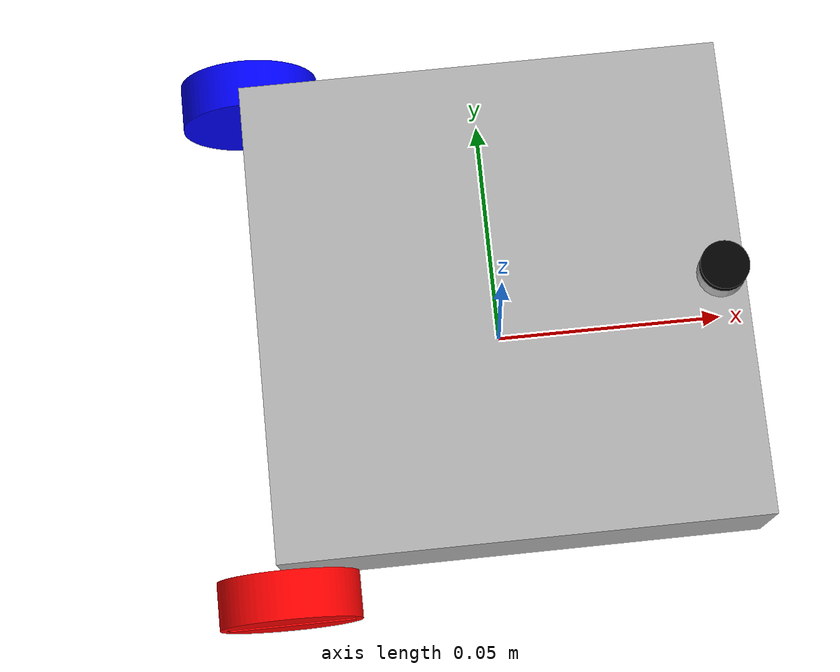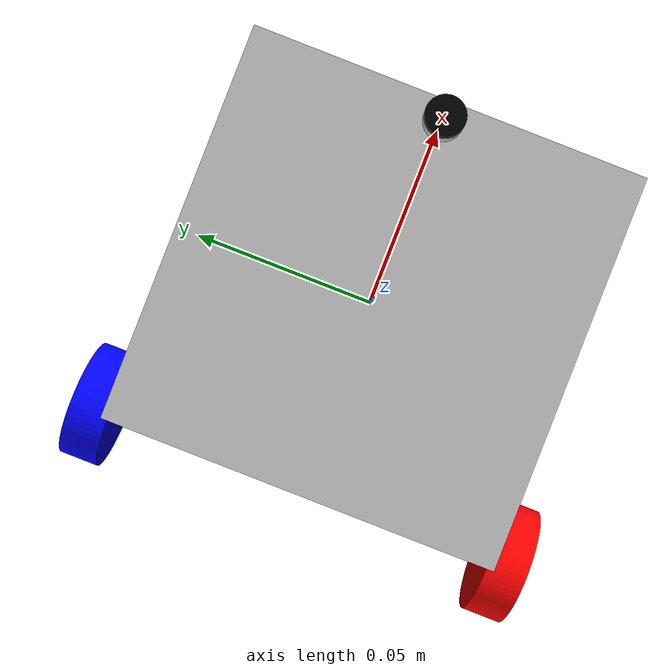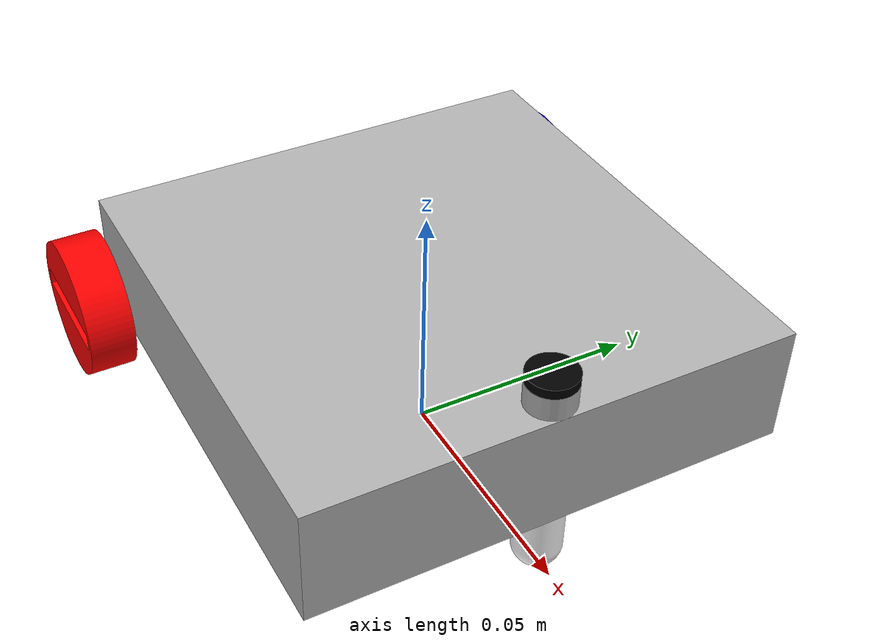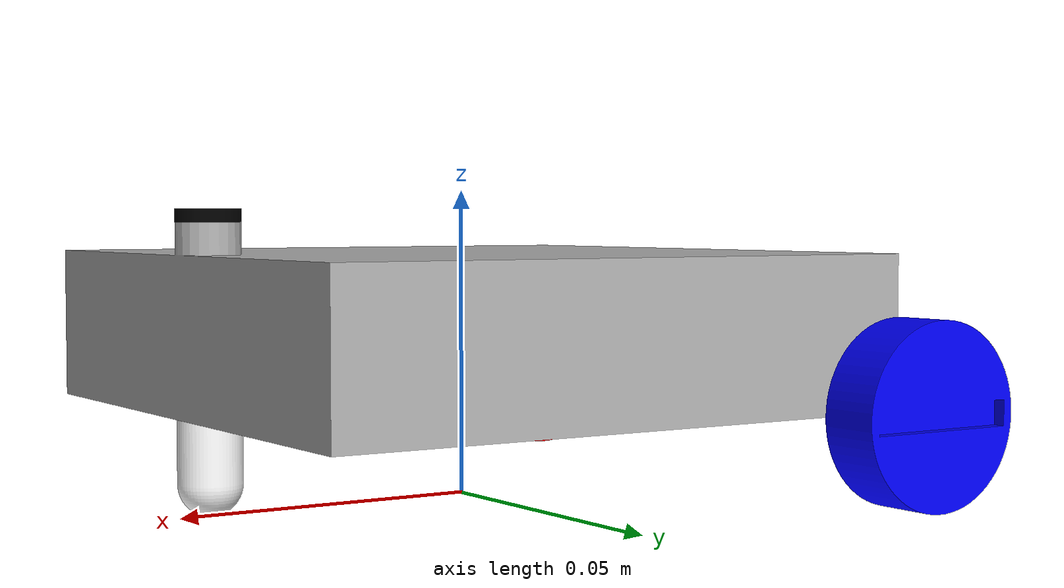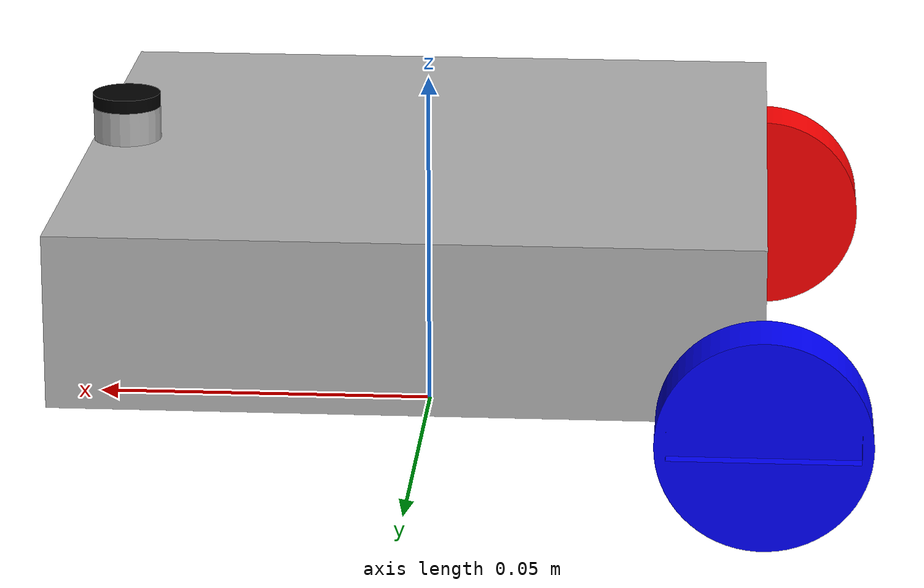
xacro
<?xml version="1.0" ?>
<robot name="bbl" xmlns:xacro="http://www.ros.org/wiki/xacro">

<xacro:include filename="$(find bbl_description)/urdf/materials.xacro" />
<xacro:include filename="$(find bbl_description)/urdf/bbl.trans" />
<xacro:include filename="$(find bbl_description)/urdf/bbl.gazebo" />
<link name="base_link">
  <inertial>
    <origin xyz="7.05749757971293e-05 0.0 0.027523524991931014" rpy="0 0 0"/>
    <mass value="0.1"/>
    <inertia ixx="0.001738" iyy="0.001745" izz="0.003277" ixy="0.0" iyz="0.0" ixz="-2e-06"/>
  </inertial>
  <visual>
    <origin xyz="0 0 0" rpy="0 0 0"/>
    <geometry>
      <mesh filename="package://bbl_description/meshes/base_link.stl" scale="0.001 0.001 0.001"/>
    </geometry>
    <material name="silver"/>
  </visual>
  <collision>
    <origin xyz="0 0 0" rpy="0 0 0"/>
    <geometry>
      <mesh filename="package://bbl_description/meshes/base_link.stl" scale="0.001 0.001 0.001"/>
    </geometry>
  </collision>
</link>

<link name="right_wheel_1">
  <inertial>
    <origin xyz="0.0 -0.004868749381211707 0.0" rpy="0 0 0"/>
    <mass value="0.053725503838161597"/>
    <inertia ixx="4e-06" iyy="6e-06" izz="3e-06" ixy="0.0" iyz="0.0" ixz="0.0"/>
  </inertial>
  <visual>
    <origin xyz="0.05 0.05 -0.015" rpy="0 0 0"/>
    <geometry>
      <mesh filename="package://bbl_description/meshes/right_wheel_1.stl" scale="0.001 0.001 0.001"/>
    </geometry>
    <material name="red"/>
  </visual>
  <collision>
    <origin xyz="0.05 0.05 -0.015" rpy="0 0 0"/>
    <geometry>
      <mesh filename="package://bbl_description/meshes/right_wheel_1.stl" scale="0.001 0.001 0.001"/>
    </geometry>
  </collision>
</link>

<link name="left_wheel_1">
  <inertial>
    <origin xyz="0.0 0.004868749381211693 -1.734723475976807e-18" rpy="0 0 0"/>
    <mass value="0.0537255038381616"/>
    <inertia ixx="4e-06" iyy="6e-06" izz="3e-06" ixy="-0.0" iyz="0.0" ixz="0.0"/>
  </inertial>
  <visual>
    <origin xyz="0.05 -0.05 -0.015" rpy="0 0 0"/>
    <geometry>
      <mesh filename="package://bbl_description/meshes/left_wheel_1.stl" scale="0.001 0.001 0.001"/>
    </geometry>
    <material name="blue"/>
  </visual>
  <collision>
    <origin xyz="0.05 -0.05 -0.015" rpy="0 0 0"/>
    <geometry>
      <mesh filename="package://bbl_description/meshes/left_wheel_1.stl" scale="0.001 0.001 0.001"/>
    </geometry>
  </collision>
</link>

<link name="caster_1">
  <inertial>
    <origin xyz="0.04499999999921576 -8.501987667641499e-19 -0.006718750000000044" rpy="0 0 0"/>
    <mass value="0.008220500776893026"/>
    <inertia ixx="0.0" iyy="0.0" izz="0.0" ixy="-0.0" iyz="0.0" ixz="0.0"/>
  </inertial>
  <visual>
    <origin xyz="-0.0 -0.0 -0.015" rpy="0 0 0"/>
    <geometry>
      <mesh filename="package://bbl_description/meshes/caster_1.stl" scale="0.001 0.001 0.001"/>
    </geometry>
    <material name="white"/>
  </visual>
  <collision>
    <origin xyz="-0.0 -0.0 -0.015" rpy="0 0 0"/>
    <geometry>
      <mesh filename="package://bbl_description/meshes/caster_1.stl" scale="0.001 0.001 0.001"/>
    </geometry>
  </collision>
</link>

<link name="lidar_1">
  <inertial>
    <origin xyz="-5.228456556594097e-13 0.0 0.0010000000000000078" rpy="0 0 0"/>
    <mass value="0.0012330751165340475"/>
    <inertia ixx="0.0" iyy="0.0" izz="0.0" ixy="0.0" iyz="0.0" ixz="-0.0"/>
  </inertial>
  <visual>
    <origin xyz="-0.045 -0.0 -0.045" rpy="0 0 0"/>
    <geometry>
      <mesh filename="package://bbl_description/meshes/lidar_1.stl" scale="0.001 0.001 0.001"/>
    </geometry>
    <material name="black"/>
  </visual>
  <collision>
    <origin xyz="-0.045 -0.0 -0.045" rpy="0 0 0"/>
    <geometry>
      <mesh filename="package://bbl_description/meshes/lidar_1.stl" scale="0.001 0.001 0.001"/>
    </geometry>
  </collision>
</link>

<joint name="right_wheel_joint" type="continuous">
  <origin xyz="-0.05 -0.05 0.015" rpy="0 0 0"/>
  <parent link="base_link"/>
  <child link="right_wheel_1"/>
  <axis xyz="0.0 1.0 0.0"/>
</joint>

<joint name="left_wheel_joint" type="continuous">
  <origin xyz="-0.05 0.05 0.015" rpy="0 0 0"/>
  <parent link="base_link"/>
  <child link="left_wheel_1"/>
  <axis xyz="0.0 1.0 0.0"/>
</joint>

<joint name="caster_joint" type="fixed">
  <origin xyz="0.0 0.0 0.015" rpy="0 0 0"/>
  <parent link="base_link"/>
  <child link="caster_1"/>
</joint>

<joint name="lidar_joint" type="fixed">
  <origin xyz="0.045 0.0 0.045" rpy="0 0 0"/>
  <parent link="base_link"/>
  <child link="lidar_1"/>
</joint>

</robot>

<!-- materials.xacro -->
<robot name="bbl" xmlns:xacro="http://www.ros.org/wiki/xacro" >

<material name="silver">
  <color rgba="0.700 0.700 0.700 1.000"/>
</material>

<material name="black">
  <color rgba="0.000 0.000 0.000 1.000"/>
</material>

<material name="white">
  <color rgba="1.00 1.00 1.000 1.000"/>
</material>

<material name="blue">
  <color rgba="0 0 1 1.000"/>
</material>

<material name="red">
  <color rgba="1 0 0 1"/>
</material>

</robot>

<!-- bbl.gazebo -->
<robot name="bbl" xmlns:xacro="http://www.ros.org/wiki/xacro" >

<xacro:property name="body_color" value="Gazebo/Silver" />

<gazebo>
  <plugin name="control" filename="libgazebo_ros_control.so"/>
</gazebo>
<gazebo reference="base_link">
  <material>${body_color}</material>
  <mu1>0.2</mu1>
  <mu2>0.2</mu2>
  <selfCollide>true</selfCollide>
  <gravity>true</gravity>
</gazebo>

<gazebo reference="right_wheel_1">
  <material>${body_color}</material>
  <mu1>0.2</mu1>
  <mu2>0.2</mu2>
  <selfCollide>true</selfCollide>
</gazebo>

<gazebo reference="left_wheel_1">
  <material>${body_color}</material>
  <mu1>0.2</mu1>
  <mu2>0.2</mu2>
  <selfCollide>true</selfCollide>
</gazebo>

<gazebo reference="caster_1">
  <material>${body_color}</material>
  <mu1>0.0001</mu1>
  <mu2>0.0001</mu2>
  <selfCollide>true</selfCollide>
</gazebo>

<gazebo reference="lidar_1">
  <material>${body_color}</material>
  <mu1>0.2</mu1>
  <mu2>0.2</mu2>
  <selfCollide>true</selfCollide>
</gazebo>

<gazebo>
  <plugin name="differential_drive_controller" filename="libgazebo_ros_diff_drive.so">

    <!-- Plugin update rate in Hz -->
    <updateRate>50</updateRate>

    <!-- Name of left joint, defaults to `left_joint` -->
    <leftJoint>left_wheel_joint</leftJoint>

    <!-- Name of right joint, defaults to `right_joint` -->
    <rightJoint>right_wheel_joint</rightJoint>

    <!-- The distance from the center of one wheel to the other, in meters, defaults to 0.34 m -->
    <wheelSeparation>0.1</wheelSeparation>

    <!-- Diameter of the wheels, in meters, defaults to 0.15 m -->
    <wheelDiameter>0.03</wheelDiameter>

    <!-- Wheel acceleration, in rad/s^2, defaults to 0.0 rad/s^2 -->
    <wheelAcceleration>0.5</wheelAcceleration>

    <!-- Maximum torque which the wheels can produce, in Nm, defaults to 5 Nm -->
    <wheelTorque>0.5</wheelTorque>

    <!-- Topic to receive geometry_msgs/Twist message commands, defaults to `cmd_vel` -->
    <commandTopic>cmd_vel</commandTopic>

    <!-- Topic to publish nav_msgs/Odometry messages, defaults to `odom` -->
    <odometryTopic>odom</odometryTopic>

    <!-- Odometry frame, defaults to `odom` -->
    <odometryFrame>odom</odometryFrame>

    <!-- Robot frame to calculate odometry from, defaults to `base_footprint` -->
    <robotBaseFrame>base_link</robotBaseFrame>

    <!-- Odometry source, 0 for ENCODER, 1 for WORLD, defaults to WORLD -->
    <odometrySource>1</odometrySource>

    <!-- Set to true to publish transforms for the wheel links, defaults to false -->
    <publishWheelTF>true</publishWheelTF>

    <!-- Set to true to publish transforms for the odometry, defaults to true -->
    <publishOdom>true</publishOdom>

    <!-- Set to true to publish sensor_msgs/JointState on /joint_states for the wheel joints, defaults to false -->
    <publishWheelJointState>true</publishWheelJointState>

    <!-- Set to true to swap right and left wheels, defaults to true -->
    <legacyMode>false</legacyMode>
  </plugin>
</gazebo>

 <!-- hokuyo -->
  <gazebo reference="lidar_1">
    <sensor type="gpu_ray" name="head_hokuyo_sensor">
      <pose>0 0 0 0 0 0</pose>
      <visualize>false</visualize>
      <update_rate>40</update_rate>
      <ray>
        <scan>
          <horizontal>
            <samples>720</samples>
            <resolution>1</resolution>
            <min_angle>-1.570796</min_angle>
            <max_angle>1.570796</max_angle>
          </horizontal>
        </scan>
        <range>
          <min>0.10</min>
          <max>30.0</max>
          <resolution>0.01</resolution>
        </range>
        <noise>
          <type>gaussian</type>
          <mean>0.0</mean>
          <stddev>0.01</stddev>
        </noise>
      </ray>
      <plugin name="gazebo_ros_head_hokuyo_controller" filename="libgazebo_ros_gpu_laser.so">
        <topicName>/scan</topicName>
        <frameName>lidar_1</frameName>
      </plugin>
    </sensor>
  </gazebo>

<gazebo reference="lidar_1">
    <sensor type="camera" name="camera1">
      <update_rate>30.0</update_rate>
      <camera name="head">
        <horizontal_fov>1.3962634</horizontal_fov>
        <image>
          <width>800</width>
          <height>800</height>
          <format>R8G8B8</format>
        </image>
        <clip>
          <near>0.02</near>
          <far>300</far>
        </clip>
        <noise>
          <type>gaussian</type>
          <!-- Noise is sampled independently per pixel on each frame.
               That pixel's noise value is added to each of its color
               channels, which at that point lie in the range [0,1]. -->
          <mean>0.0</mean>
          <stddev>0.007</stddev>
        </noise>
      </camera>
      <plugin name="camera_controller" filename="libgazebo_ros_camera.so">
        <alwaysOn>true</alwaysOn>
        <updateRate>0.0</updateRate>
        <cameraName>rrbot/camera1</cameraName>
        <imageTopicName>image_raw</imageTopicName>
        <cameraInfoTopicName>camera_info</cameraInfoTopicName>
        <frameName>lidar_1</frameName>
        <hackBaseline>0.07</hackBaseline>
        <distortionK1>0.0</distortionK1>
        <distortionK2>0.0</distortionK2>
        <distortionK3>0.0</distortionK3>
        <distortionT1>0.0</distortionT1>
        <distortionT2>0.0</distortionT2>
      </plugin>
    </sensor>
  </gazebo>

</robot>
